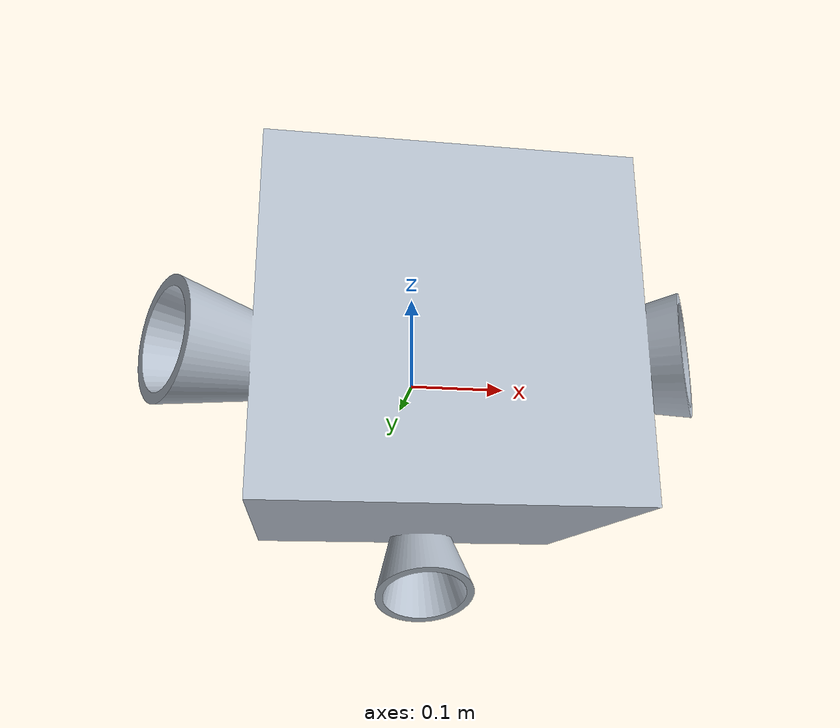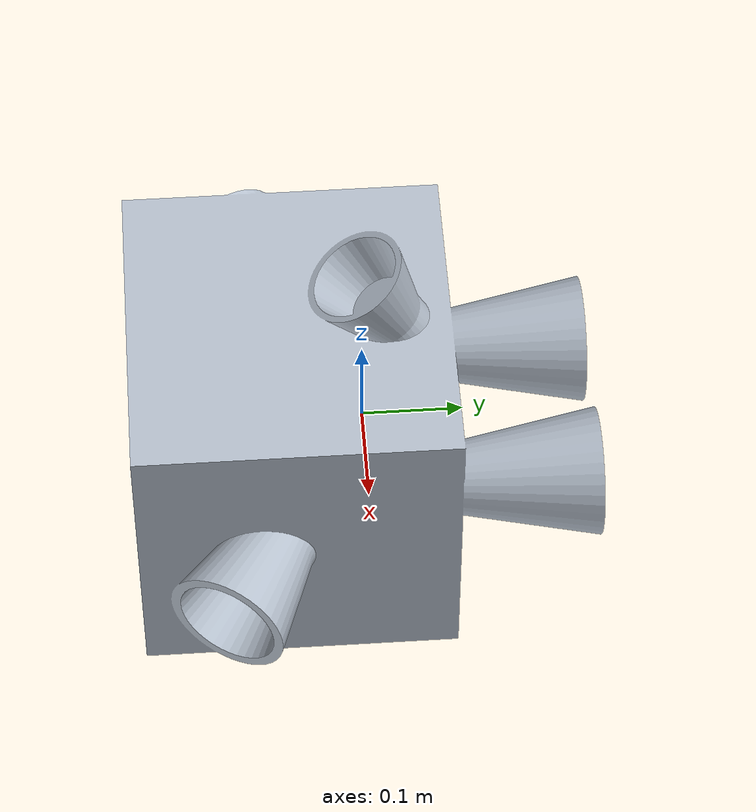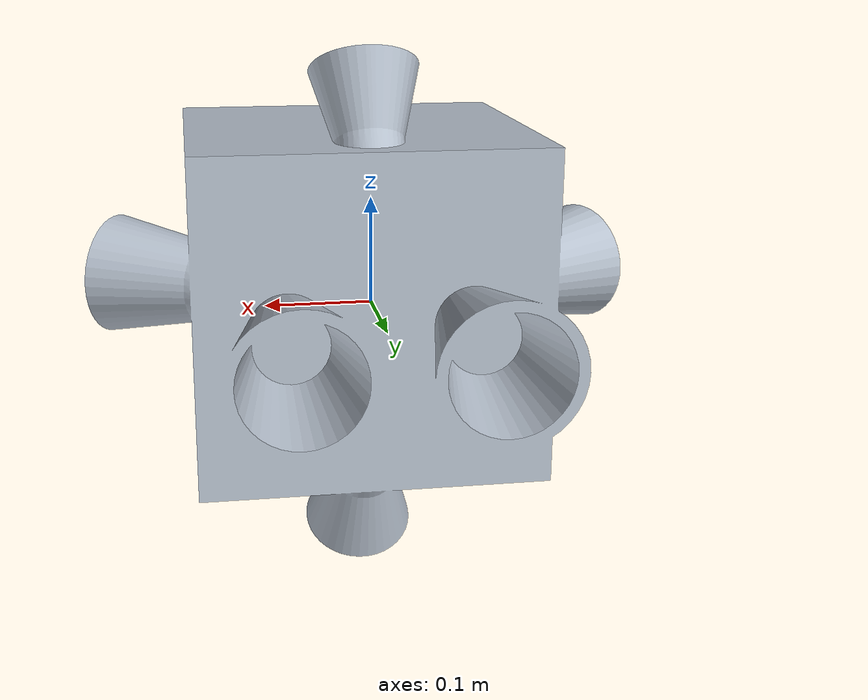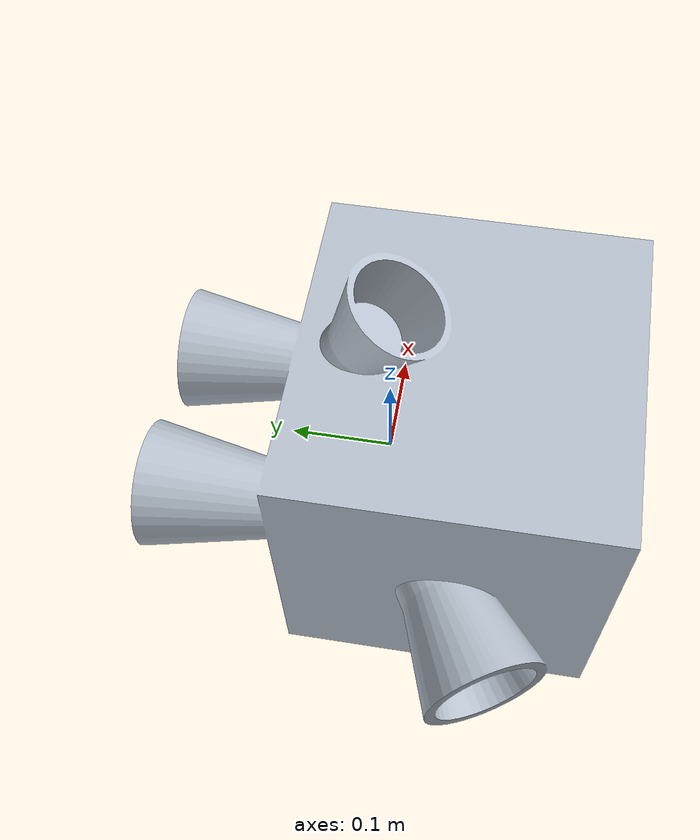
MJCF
<mujoco model="unm_space_tug">
  <compiler meshdir="../assets" angle="radian"/>

  <option gravity="0 0 0" timestep="0.002" integrator="RK4">
    <flag contact="disable"/>
  </option>

  <visual>
    <headlight ambient="0.32 0.32 0.36" diffuse="0.55 0.53 0.50" specular="0.25 0.25 0.25"/>
    <quality shadowsize="0"/>
    <map force="0.1"/>
  </visual>

  <asset>
    <texture name="space" type="skybox" builtin="gradient"
             rgb1="0.020 0.034 0.072" rgb2="0.0 0.0 0.004" width="512" height="512"/>
    <mesh name="tug" file="tugnew5_centered.stl" scale="0.01 0.01 0.01"/>
  </asset>

  <worldbody>
    <light name="key" directional="true" pos="2 3 2"  dir="-0.45 -0.7 -0.45" diffuse="0.85 0.81 0.72"/>
    <light name="rim" directional="true" pos="-3 -1 -2" dir="0.65 0.25 0.5"  diffuse="0.22 0.30 0.48"/>

    <body name="tug" pos="0 0 0">
      <freejoint/>
      <!-- mass/inertia chosen to match the reference web-demo dynamics
           (1 kg, I = 0.03 kg m^2 isotropic) -->
      <inertial pos="0 0 0" mass="1.0" diaginertia="0.03 0.03 0.03"/>
      <geom type="mesh" mesh="tug" rgba="0.72 0.76 0.81 1"
            contype="0" conaffinity="0"/>

      <!-- nozzle exit sites; zaxis = thrust direction -->
      <site name="thr1" pos="-0.2160 -0.1137  0.0000" zaxis=" 0.8660254  0.5  0.0"       size="0.004" rgba="1 0.7 0.3 0"/>
      <site name="thr2" pos=" 0.2164 -0.1294  0.0000" zaxis="-0.8660254  0.5  0.0"       size="0.004" rgba="1 0.7 0.3 0"/>
      <site name="thr3" pos=" 0.0136  0.0062 -0.2029" zaxis=" 0.0        0.5  0.8660254" size="0.004" rgba="1 0.7 0.3 0"/>
      <site name="thr4" pos=" 0.0056 -0.0027  0.2032" zaxis=" 0.0        0.5 -0.8660254" size="0.004" rgba="1 0.7 0.3 0"/>
      <site name="thr5" pos="-0.0805  0.2250  0.0004" zaxis=" 0.0       -1.0  0.0"       size="0.004" rgba="1 0.7 0.3 0"/>
      <site name="thr6" pos=" 0.0855  0.2250  0.0004" zaxis=" 0.0       -1.0  0.0"       size="0.004" rgba="1 0.7 0.3 0"/>
    </body>
  </worldbody>

  <actuator>
    <motor name="t1" site="thr1" gear="0 0 0.26 0 0 0" ctrlrange="0 1"/>
    <motor name="t2" site="thr2" gear="0 0 0.26 0 0 0" ctrlrange="0 1"/>
    <motor name="t3" site="thr3" gear="0 0 0.26 0 0 0" ctrlrange="0 1"/>
    <motor name="t4" site="thr4" gear="0 0 0.26 0 0 0" ctrlrange="0 1"/>
    <motor name="t5" site="thr5" gear="0 0 0.26 0 0 0" ctrlrange="0 1"/>
    <motor name="t6" site="thr6" gear="0 0 0.26 0 0 0" ctrlrange="0 1"/>
  </actuator>
</mujoco>
